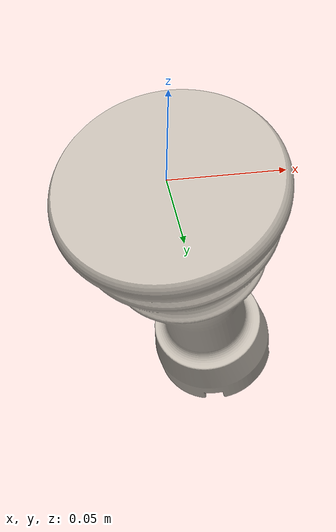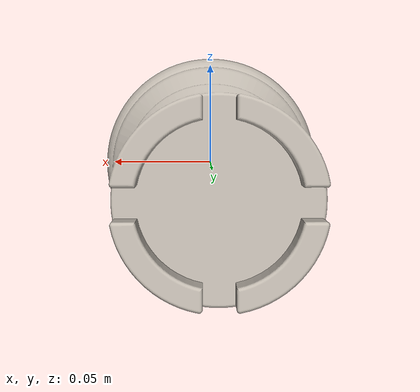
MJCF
<mujoco model="rook">
  <asset>
    <mesh file="meshes/rook.stl" name="rook_mesh" scale="0.001 0.001 0.001"/>
    <texture file="../textures/chess_texture.png" type="2d" name="tex-rook" />
    <material name="mat-rook" reflectance="0.2" texrepeat="1 1" texture="tex-rook" texuniform="true"/>
  </asset>
  <worldbody>
    <body>
      <body name="object">
        <geom pos="0 0 0" mesh="rook_mesh" type="mesh" solimp="0.998 0.998 0.001" solref="0.001 1" density="5000" friction="0.5 0.3 0.1" material="mat-rook" group="0" condim="4"/>
      </body>
      <site rgba="0 0 0 0" size="0.005" pos="0 0 0" name="rook_site"/>
    </body>
  </worldbody>
</mujoco>
